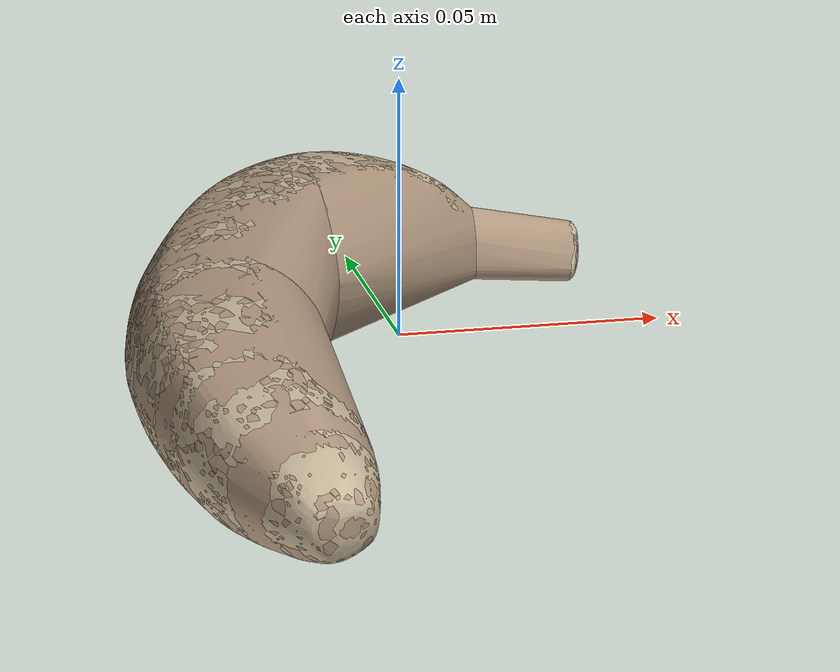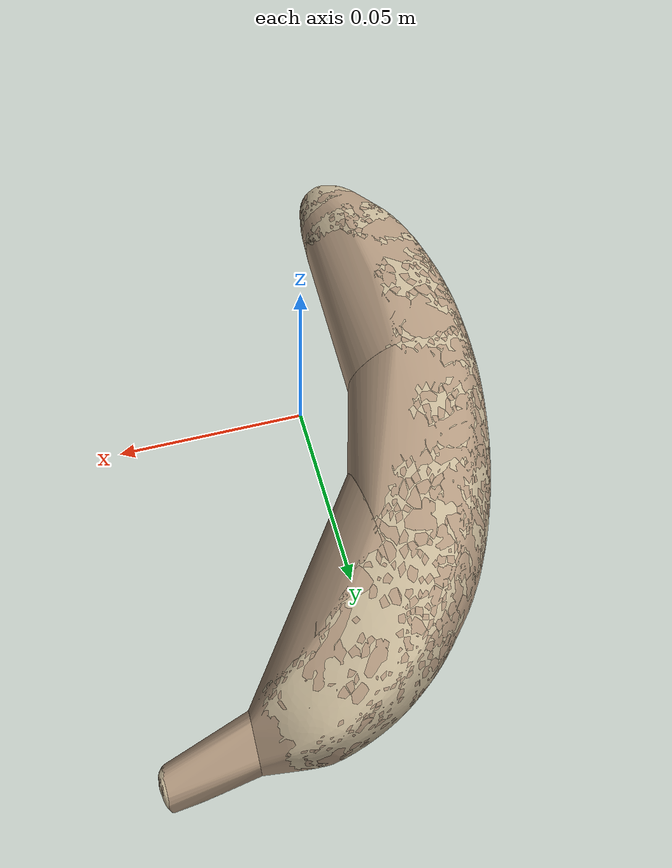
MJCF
<mujoco model="banana"><asset><mesh name="banana_part0" file="../ycb_mjcf/banana/part_00.stl" /><mesh name="banana_part1" file="../ycb_mjcf/banana/part_01.stl" /><mesh name="banana_part2" file="../ycb_mjcf/banana/part_02.stl" /><mesh name="banana_part3" file="../ycb_mjcf/banana/part_03.stl" /><mesh name="banana_visual" file="../ycb_mjcf/banana/visual.stl" /></asset><worldbody><body><body name="object"><geom type="mesh" mesh="banana_part0" group="0" condim="4" solimp="0.9 0.95 0.001" solref="0.02 1" friction="0.95 0.3 0.1" rgba="0.7 0.6 0.5 1" /><geom type="mesh" mesh="banana_part1" group="0" condim="4" solimp="0.9 0.95 0.001" solref="0.02 1" friction="0.95 0.3 0.1" rgba="0.7 0.6 0.5 1" /><geom type="mesh" mesh="banana_part2" group="0" condim="4" solimp="0.9 0.95 0.001" solref="0.02 1" friction="0.95 0.3 0.1" rgba="0.7 0.6 0.5 1" /><geom type="mesh" mesh="banana_part3" group="0" condim="4" solimp="0.9 0.95 0.001" solref="0.02 1" friction="0.95 0.3 0.1" rgba="0.7 0.6 0.5 1" /><geom type="mesh" mesh="banana_visual" group="1" contype="0" conaffinity="0" mass="0" rgba="0.78 0.72 0.6 1" /></body><site name="bottom_site" rgba="0 0 0 0" size="0.005" pos="0.000000 0.000000 -0.018370" /><site name="top_site" rgba="0 0 0 0" size="0.005" pos="0.000000 0.000000 0.018370" /><site name="horizontal_radius_site" rgba="0 0 0 0" size="0.005" pos="0.104537 0.104537 0.000000" /></body></worldbody></mujoco>
